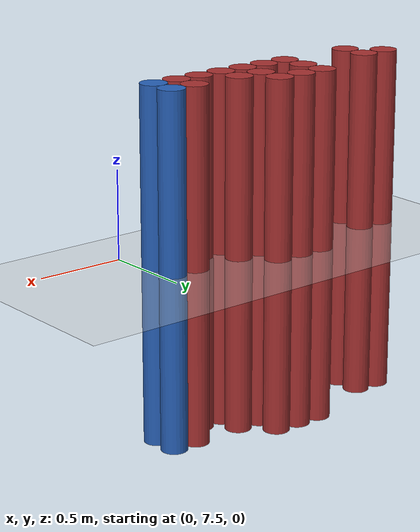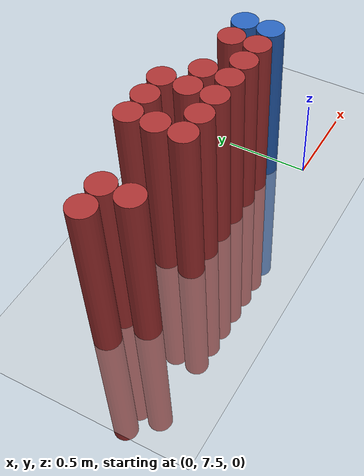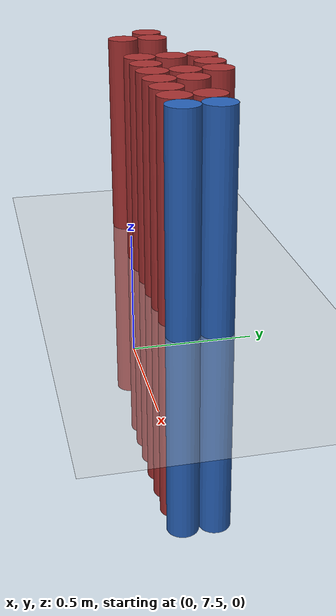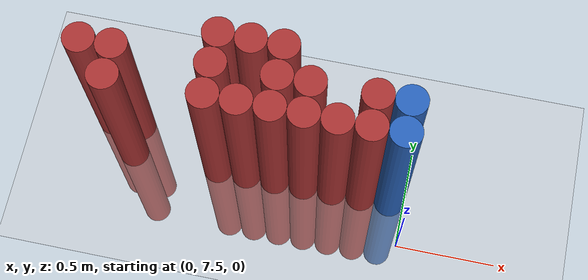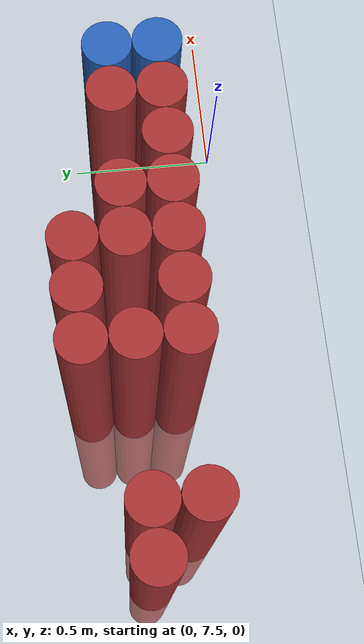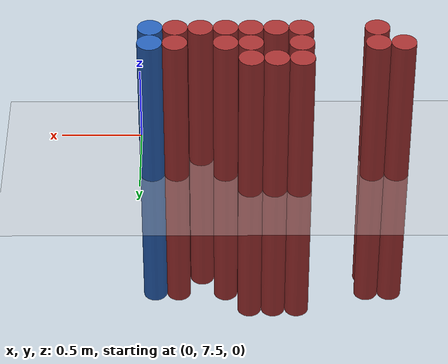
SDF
<sdf version="1.6">
 <world name="default">
  <model name="ground_plane">
   <static>1</static>
   <link name="link">
    <collision name="collision">
     <geometry><plane><normal>0 0 1</normal><size>100 100</size></plane></geometry>
     <surface><friction><ode><mu>100</mu><mu2>50</mu2></ode></friction></surface>
    </collision>
    <visual name="visual">
     <cast_shadows>0</cast_shadows>
     <geometry><plane><normal>0 0 1</normal><size>100 100</size></plane></geometry>
     <material>
      <script><uri>file://media/materials/scripts/gazebo.material</uri><name>Gazebo/Grey</name></script>
     </material>
    </visual>
   </link>
  </model>
  <model name="unit_cylinder_194">
   <static>1</static>
   <pose>-1.575000 7.875000 0.000000 0.000000 0.000000 0.000000</pose>
   <link name="link">
    <inertial>
     <mass>1</mass>
     <inertia><ixx>0.145833</ixx><ixy>0</ixy><ixz>0</ixz><iyy>0.145833</iyy><iyz>0</iyz><izz>0.125</izz></inertia>
    </inertial>
    <collision name="collision">
     <geometry><cylinder><radius>0.075000</radius><length>2</length></cylinder></geometry>
    </collision>
    <visual name="visual">
     <geometry><cylinder><radius>0.075000</radius><length>2</length></cylinder></geometry>
     <material>
      <ambient>0.648000 0.192000 0.192000 1</ambient>
      <diffuse>0.648000 0.192000 0.192000 1</diffuse>
     </material>
     <material>
      <script><name>Gazebo/Grey</name><uri>file://media/materials/scripts/gazebo.material</uri></script>
     </material>
    </visual>
   </link>
  </model>
  <model name="unit_cylinder_198">
   <static>1</static>
   <pose>-1.425000 7.725000 0.000000 0.000000 0.000000 0.000000</pose>
   <link name="link">
    <inertial>
     <mass>1</mass>
     <inertia><ixx>0.145833</ixx><ixy>0</ixy><ixz>0</ixz><iyy>0.145833</iyy><iyz>0</iyz><izz>0.125</izz></inertia>
    </inertial>
    <collision name="collision">
     <geometry><cylinder><radius>0.075000</radius><length>2</length></cylinder></geometry>
    </collision>
    <visual name="visual">
     <geometry><cylinder><radius>0.075000</radius><length>2</length></cylinder></geometry>
     <material>
      <ambient>0.648000 0.192000 0.192000 1</ambient>
      <diffuse>0.648000 0.192000 0.192000 1</diffuse>
     </material>
     <material>
      <script><name>Gazebo/Grey</name><uri>file://media/materials/scripts/gazebo.material</uri></script>
     </material>
    </visual>
   </link>
  </model>
  <model name="unit_cylinder_199">
   <static>1</static>
   <pose>-1.425000 7.875000 0.000000 0.000000 0.000000 0.000000</pose>
   <link name="link">
    <inertial>
     <mass>1</mass>
     <inertia><ixx>0.145833</ixx><ixy>0</ixy><ixz>0</ixz><iyy>0.145833</iyy><iyz>0</iyz><izz>0.125</izz></inertia>
    </inertial>
    <collision name="collision">
     <geometry><cylinder><radius>0.075000</radius><length>2</length></cylinder></geometry>
    </collision>
    <visual name="visual">
     <geometry><cylinder><radius>0.075000</radius><length>2</length></cylinder></geometry>
     <material>
      <ambient>0.648000 0.192000 0.192000 1</ambient>
      <diffuse>0.648000 0.192000 0.192000 1</diffuse>
     </material>
     <material>
      <script><name>Gazebo/Grey</name><uri>file://media/materials/scripts/gazebo.material</uri></script>
     </material>
    </visual>
   </link>
  </model>
  <model name="unit_cylinder_205">
   <static>1</static>
   <pose>-0.975000 7.725000 0.000000 0.000000 0.000000 0.000000</pose>
   <link name="link">
    <inertial>
     <mass>1</mass>
     <inertia><ixx>0.145833</ixx><ixy>0</ixy><ixz>0</ixz><iyy>0.145833</iyy><iyz>0</iyz><izz>0.125</izz></inertia>
    </inertial>
    <collision name="collision">
     <geometry><cylinder><radius>0.075000</radius><length>2</length></cylinder></geometry>
    </collision>
    <visual name="visual">
     <geometry><cylinder><radius>0.075000</radius><length>2</length></cylinder></geometry>
     <material>
      <ambient>0.648000 0.192000 0.192000 1</ambient>
      <diffuse>0.648000 0.192000 0.192000 1</diffuse>
     </material>
     <material>
      <script><name>Gazebo/Grey</name><uri>file://media/materials/scripts/gazebo.material</uri></script>
     </material>
    </visual>
   </link>
  </model>
  <model name="unit_cylinder_206">
   <static>1</static>
   <pose>-0.975000 7.875000 0.000000 0.000000 0.000000 0.000000</pose>
   <link name="link">
    <inertial>
     <mass>1</mass>
     <inertia><ixx>0.145833</ixx><ixy>0</ixy><ixz>0</ixz><iyy>0.145833</iyy><iyz>0</iyz><izz>0.125</izz></inertia>
    </inertial>
    <collision name="collision">
     <geometry><cylinder><radius>0.075000</radius><length>2</length></cylinder></geometry>
    </collision>
    <visual name="visual">
     <geometry><cylinder><radius>0.075000</radius><length>2</length></cylinder></geometry>
     <material>
      <ambient>0.648000 0.192000 0.192000 1</ambient>
      <diffuse>0.648000 0.192000 0.192000 1</diffuse>
     </material>
     <material>
      <script><name>Gazebo/Grey</name><uri>file://media/materials/scripts/gazebo.material</uri></script>
     </material>
    </visual>
   </link>
  </model>
  <model name="unit_cylinder_207">
   <static>1</static>
   <pose>-0.975000 8.025000 0.000000 0.000000 0.000000 0.000000</pose>
   <link name="link">
    <inertial>
     <mass>1</mass>
     <inertia><ixx>0.145833</ixx><ixy>0</ixy><ixz>0</ixz><iyy>0.145833</iyy><iyz>0</iyz><izz>0.125</izz></inertia>
    </inertial>
    <collision name="collision">
     <geometry><cylinder><radius>0.075000</radius><length>2</length></cylinder></geometry>
    </collision>
    <visual name="visual">
     <geometry><cylinder><radius>0.075000</radius><length>2</length></cylinder></geometry>
     <material>
      <ambient>0.648000 0.192000 0.192000 1</ambient>
      <diffuse>0.648000 0.192000 0.192000 1</diffuse>
     </material>
     <material>
      <script><name>Gazebo/Grey</name><uri>file://media/materials/scripts/gazebo.material</uri></script>
     </material>
    </visual>
   </link>
  </model>
  <model name="unit_cylinder_213">
   <static>1</static>
   <pose>-0.825000 7.725000 0.000000 0.000000 0.000000 0.000000</pose>
   <link name="link">
    <inertial>
     <mass>1</mass>
     <inertia><ixx>0.145833</ixx><ixy>0</ixy><ixz>0</ixz><iyy>0.145833</iyy><iyz>0</iyz><izz>0.125</izz></inertia>
    </inertial>
    <collision name="collision">
     <geometry><cylinder><radius>0.075000</radius><length>2</length></cylinder></geometry>
    </collision>
    <visual name="visual">
     <geometry><cylinder><radius>0.075000</radius><length>2</length></cylinder></geometry>
     <material>
      <ambient>0.648000 0.192000 0.192000 1</ambient>
      <diffuse>0.648000 0.192000 0.192000 1</diffuse>
     </material>
     <material>
      <script><name>Gazebo/Grey</name><uri>file://media/materials/scripts/gazebo.material</uri></script>
     </material>
    </visual>
   </link>
  </model>
  <model name="unit_cylinder_214">
   <static>1</static>
   <pose>-0.825000 8.025000 0.000000 0.000000 0.000000 0.000000</pose>
   <link name="link">
    <inertial>
     <mass>1</mass>
     <inertia><ixx>0.145833</ixx><ixy>0</ixy><ixz>0</ixz><iyy>0.145833</iyy><iyz>0</iyz><izz>0.125</izz></inertia>
    </inertial>
    <collision name="collision">
     <geometry><cylinder><radius>0.075000</radius><length>2</length></cylinder></geometry>
    </collision>
    <visual name="visual">
     <geometry><cylinder><radius>0.075000</radius><length>2</length></cylinder></geometry>
     <material>
      <ambient>0.648000 0.192000 0.192000 1</ambient>
      <diffuse>0.648000 0.192000 0.192000 1</diffuse>
     </material>
     <material>
      <script><name>Gazebo/Grey</name><uri>file://media/materials/scripts/gazebo.material</uri></script>
     </material>
    </visual>
   </link>
  </model>
  <model name="unit_cylinder_218">
   <static>1</static>
   <pose>-0.675000 7.725000 0.000000 0.000000 0.000000 0.000000</pose>
   <link name="link">
    <inertial>
     <mass>1</mass>
     <inertia><ixx>0.145833</ixx><ixy>0</ixy><ixz>0</ixz><iyy>0.145833</iyy><iyz>0</iyz><izz>0.125</izz></inertia>
    </inertial>
    <collision name="collision">
     <geometry><cylinder><radius>0.075000</radius><length>2</length></cylinder></geometry>
    </collision>
    <visual name="visual">
     <geometry><cylinder><radius>0.075000</radius><length>2</length></cylinder></geometry>
     <material>
      <ambient>0.648000 0.192000 0.192000 1</ambient>
      <diffuse>0.648000 0.192000 0.192000 1</diffuse>
     </material>
     <material>
      <script><name>Gazebo/Grey</name><uri>file://media/materials/scripts/gazebo.material</uri></script>
     </material>
    </visual>
   </link>
  </model>
  <model name="unit_cylinder_219">
   <static>1</static>
   <pose>-0.675000 7.875000 0.000000 0.000000 0.000000 0.000000</pose>
   <link name="link">
    <inertial>
     <mass>1</mass>
     <inertia><ixx>0.145833</ixx><ixy>0</ixy><ixz>0</ixz><iyy>0.145833</iyy><iyz>0</iyz><izz>0.125</izz></inertia>
    </inertial>
    <collision name="collision">
     <geometry><cylinder><radius>0.075000</radius><length>2</length></cylinder></geometry>
    </collision>
    <visual name="visual">
     <geometry><cylinder><radius>0.075000</radius><length>2</length></cylinder></geometry>
     <material>
      <ambient>0.648000 0.192000 0.192000 1</ambient>
      <diffuse>0.648000 0.192000 0.192000 1</diffuse>
     </material>
     <material>
      <script><name>Gazebo/Grey</name><uri>file://media/materials/scripts/gazebo.material</uri></script>
     </material>
    </visual>
   </link>
  </model>
  <model name="unit_cylinder_220">
   <static>1</static>
   <pose>-0.675000 8.025000 0.000000 0.000000 0.000000 0.000000</pose>
   <link name="link">
    <inertial>
     <mass>1</mass>
     <inertia><ixx>0.145833</ixx><ixy>0</ixy><ixz>0</ixz><iyy>0.145833</iyy><iyz>0</iyz><izz>0.125</izz></inertia>
    </inertial>
    <collision name="collision">
     <geometry><cylinder><radius>0.075000</radius><length>2</length></cylinder></geometry>
    </collision>
    <visual name="visual">
     <geometry><cylinder><radius>0.075000</radius><length>2</length></cylinder></geometry>
     <material>
      <ambient>0.648000 0.192000 0.192000 1</ambient>
      <diffuse>0.648000 0.192000 0.192000 1</diffuse>
     </material>
     <material>
      <script><name>Gazebo/Grey</name><uri>file://media/materials/scripts/gazebo.material</uri></script>
     </material>
    </visual>
   </link>
  </model>
  <model name="unit_cylinder_224">
   <static>1</static>
   <pose>-0.525000 7.725000 0.000000 0.000000 0.000000 0.000000</pose>
   <link name="link">
    <inertial>
     <mass>1</mass>
     <inertia><ixx>0.145833</ixx><ixy>0</ixy><ixz>0</ixz><iyy>0.145833</iyy><iyz>0</iyz><izz>0.125</izz></inertia>
    </inertial>
    <collision name="collision">
     <geometry><cylinder><radius>0.075000</radius><length>2</length></cylinder></geometry>
    </collision>
    <visual name="visual">
     <geometry><cylinder><radius>0.075000</radius><length>2</length></cylinder></geometry>
     <material>
      <ambient>0.648000 0.192000 0.192000 1</ambient>
      <diffuse>0.648000 0.192000 0.192000 1</diffuse>
     </material>
     <material>
      <script><name>Gazebo/Grey</name><uri>file://media/materials/scripts/gazebo.material</uri></script>
     </material>
    </visual>
   </link>
  </model>
  <model name="unit_cylinder_225">
   <static>1</static>
   <pose>-0.525000 7.875000 0.000000 0.000000 0.000000 0.000000</pose>
   <link name="link">
    <inertial>
     <mass>1</mass>
     <inertia><ixx>0.145833</ixx><ixy>0</ixy><ixz>0</ixz><iyy>0.145833</iyy><iyz>0</iyz><izz>0.125</izz></inertia>
    </inertial>
    <collision name="collision">
     <geometry><cylinder><radius>0.075000</radius><length>2</length></cylinder></geometry>
    </collision>
    <visual name="visual">
     <geometry><cylinder><radius>0.075000</radius><length>2</length></cylinder></geometry>
     <material>
      <ambient>0.648000 0.192000 0.192000 1</ambient>
      <diffuse>0.648000 0.192000 0.192000 1</diffuse>
     </material>
     <material>
      <script><name>Gazebo/Grey</name><uri>file://media/materials/scripts/gazebo.material</uri></script>
     </material>
    </visual>
   </link>
  </model>
  <model name="unit_cylinder_229">
   <static>1</static>
   <pose>-0.375000 7.725000 0.000000 0.000000 0.000000 0.000000</pose>
   <link name="link">
    <inertial>
     <mass>1</mass>
     <inertia><ixx>0.145833</ixx><ixy>0</ixy><ixz>0</ixz><iyy>0.145833</iyy><iyz>0</iyz><izz>0.125</izz></inertia>
    </inertial>
    <collision name="collision">
     <geometry><cylinder><radius>0.075000</radius><length>2</length></cylinder></geometry>
    </collision>
    <visual name="visual">
     <geometry><cylinder><radius>0.075000</radius><length>2</length></cylinder></geometry>
     <material>
      <ambient>0.648000 0.192000 0.192000 1</ambient>
      <diffuse>0.648000 0.192000 0.192000 1</diffuse>
     </material>
     <material>
      <script><name>Gazebo/Grey</name><uri>file://media/materials/scripts/gazebo.material</uri></script>
     </material>
    </visual>
   </link>
  </model>
  <model name="unit_cylinder_241">
   <static>1</static>
   <pose>-0.225000 7.725000 0.000000 0.000000 0.000000 0.000000</pose>
   <link name="link">
    <inertial>
     <mass>1</mass>
     <inertia><ixx>0.145833</ixx><ixy>0</ixy><ixz>0</ixz><iyy>0.145833</iyy><iyz>0</iyz><izz>0.125</izz></inertia>
    </inertial>
    <collision name="collision">
     <geometry><cylinder><radius>0.075000</radius><length>2</length></cylinder></geometry>
    </collision>
    <visual name="visual">
     <geometry><cylinder><radius>0.075000</radius><length>2</length></cylinder></geometry>
     <material>
      <ambient>0.648000 0.192000 0.192000 1</ambient>
      <diffuse>0.648000 0.192000 0.192000 1</diffuse>
     </material>
     <material>
      <script><name>Gazebo/Grey</name><uri>file://media/materials/scripts/gazebo.material</uri></script>
     </material>
    </visual>
   </link>
  </model>
  <model name="unit_cylinder_242">
   <static>1</static>
   <pose>-0.225000 7.875000 0.000000 0.000000 0.000000 0.000000</pose>
   <link name="link">
    <inertial>
     <mass>1</mass>
     <inertia><ixx>0.145833</ixx><ixy>0</ixy><ixz>0</ixz><iyy>0.145833</iyy><iyz>0</iyz><izz>0.125</izz></inertia>
    </inertial>
    <collision name="collision">
     <geometry><cylinder><radius>0.075000</radius><length>2</length></cylinder></geometry>
    </collision>
    <visual name="visual">
     <geometry><cylinder><radius>0.075000</radius><length>2</length></cylinder></geometry>
     <material>
      <ambient>0.648000 0.192000 0.192000 1</ambient>
      <diffuse>0.648000 0.192000 0.192000 1</diffuse>
     </material>
     <material>
      <script><name>Gazebo/Grey</name><uri>file://media/materials/scripts/gazebo.material</uri></script>
     </material>
    </visual>
   </link>
  </model>
  <model name="unit_cylinder_267">
   <static>1</static>
   <pose>-0.075000 7.725000 0.000000 0.000000 0.000000 0.000000</pose>
   <link name="link">
    <inertial>
     <mass>1</mass>
     <inertia><ixx>0.145833</ixx><ixy>0</ixy><ixz>0</ixz><iyy>0.145833</iyy><iyz>0</iyz><izz>0.125</izz></inertia>
    </inertial>
    <collision name="collision">
     <geometry><cylinder><radius>0.075000</radius><length>2</length></cylinder></geometry>
    </collision>
    <visual name="visual">
     <geometry><cylinder><radius>0.075000</radius><length>2</length></cylinder></geometry>
     <material>
      <ambient>0.152000 0.379000 0.720000 1</ambient>
      <diffuse>0.152000 0.379000 0.720000 1</diffuse>
     </material>
     <material>
      <script><name>Gazebo/Grey</name><uri>file://media/materials/scripts/gazebo.material</uri></script>
     </material>
    </visual>
   </link>
  </model>
  <model name="unit_cylinder_268">
   <static>1</static>
   <pose>-0.075000 7.875000 0.000000 0.000000 0.000000 0.000000</pose>
   <link name="link">
    <inertial>
     <mass>1</mass>
     <inertia><ixx>0.145833</ixx><ixy>0</ixy><ixz>0</ixz><iyy>0.145833</iyy><iyz>0</iyz><izz>0.125</izz></inertia>
    </inertial>
    <collision name="collision">
     <geometry><cylinder><radius>0.075000</radius><length>2</length></cylinder></geometry>
    </collision>
    <visual name="visual">
     <geometry><cylinder><radius>0.075000</radius><length>2</length></cylinder></geometry>
     <material>
      <ambient>0.152000 0.379000 0.720000 1</ambient>
      <diffuse>0.152000 0.379000 0.720000 1</diffuse>
     </material>
     <material>
      <script><name>Gazebo/Grey</name><uri>file://media/materials/scripts/gazebo.material</uri></script>
     </material>
    </visual>
   </link>
  </model>
 </world>
</sdf>
